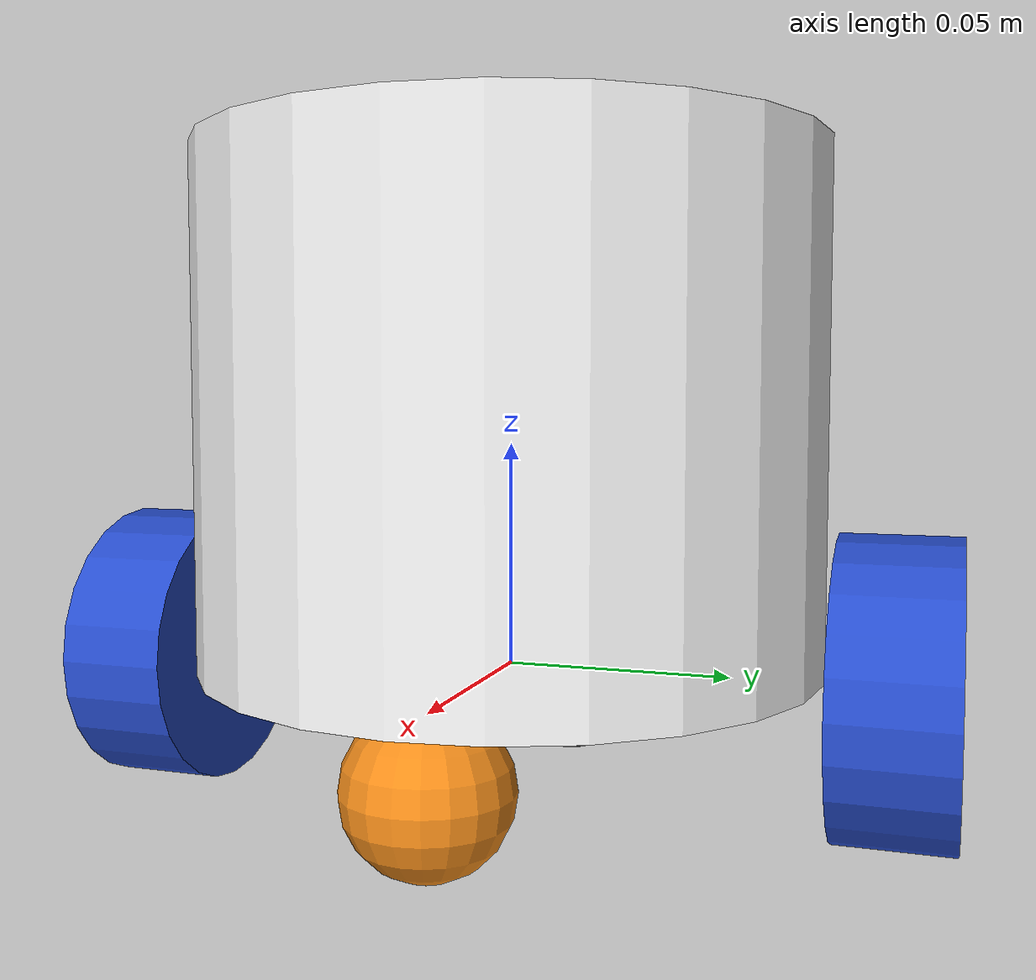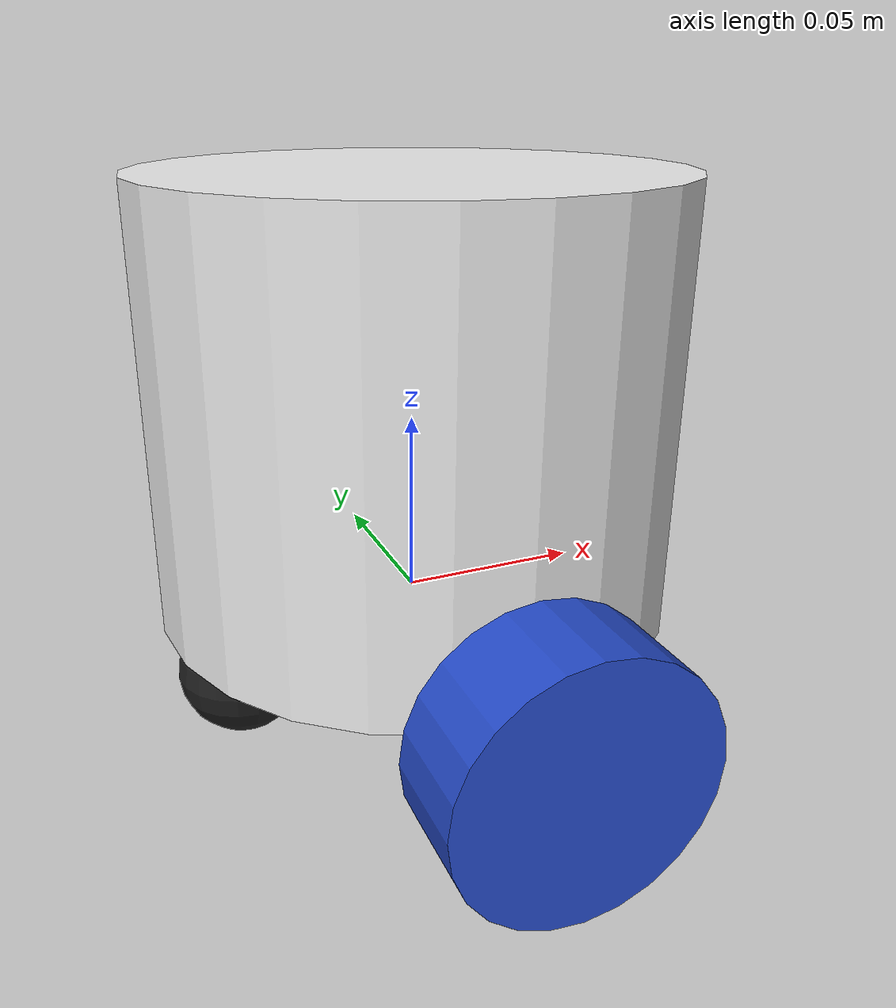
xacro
<?xml version="1.0"?>
<robot xmlns:xacro="http://www.ros.org/wiki/xacro">

    <xacro:include filename="colours.xacro"/>
    <xacro:include filename="inertial_macros.xacro"/>

    <xacro:property name="chassis_radius" value="0.07"/>
    <xacro:property name="chassis_height" value="0.115"/>
    <xacro:property name="wheel_radius" value="0.0325"/>
    <xacro:property name="wheel_width" value="0.025"/>
    <xacro:property name="caster_wheel_radius" value="0.0175"/>
    <xacro:property name="wheel_offset" value="${chassis_radius+0.015}"/>
    <!--xacro:property name="wheel_offset" value="${chassis_radius-wheel_width/2+0.005}"/-->

    <link name="base_link">
    </link>

    <link name="chassis">
        <visual>
            <origin xyz="0 0 ${chassis_height/2}" rpy="0 0 0"/>
            <geometry>
                <cylinder radius="${chassis_radius}" length="${chassis_height}"/>
            </geometry>
            <material name="white"/>
        </visual>
        <collision>
            <origin xyz="0 0 ${chassis_height/2}" rpy="0 0 0"/>
            <geometry>
                <cylinder radius="${chassis_radius}" length="${chassis_height}"/>
            </geometry>
        </collision>
        <xacro:inertial_cylinder mass="0.5" radius="${chassis_radius}" length="${chassis_height}">
            <origin xyz="0 0 ${chassis_height/2}" rpy="0 0 0"/>
        </xacro:inertial_cylinder>
    </link>
    <link name="left_wheel">
        <visual>
            <geometry>
                <cylinder radius="${wheel_radius}" length="${wheel_width}"/>
            </geometry>
            <material name="blue"/>
        </visual>
        <collision>
            <geometry>
                <cylinder radius="${wheel_radius}" length="${wheel_width}"/>
            </geometry>
        </collision>
        <xacro:inertial_cylinder mass="0.1" radius="${wheel_radius}" length="${wheel_width}">
            <origin xyz="0 0 0" rpy="0 0 0"/>
        </xacro:inertial_cylinder>
    </link>
    <link name="right_wheel">
        <visual>
            <geometry>
                <cylinder radius="${wheel_radius}" length="${wheel_width}"/>
            </geometry>
            <material name="blue"/>
        </visual>
        <collision>
            <geometry>
                <cylinder radius="${wheel_radius}" length="${wheel_width}"/>
            </geometry>
        </collision>
        <xacro:inertial_cylinder mass="0.1" radius="${wheel_radius}" length="${wheel_width}">
            <origin xyz="0 0 0" rpy="0 0 0"/>
        </xacro:inertial_cylinder>
    </link>
    <link name="top_caster_wheel">
        <visual>
            <geometry>
                <sphere radius="${caster_wheel_radius}"/>
            </geometry>
            <material name="orange"/>
        </visual>
        <collision>
            <geometry>
                <sphere radius="${caster_wheel_radius}"/>
            </geometry>
        </collision>
        <xacro:inertial_sphere mass="0.1" radius="${caster_wheel_radius}">
            <origin xyz="0 0 0" rpy="0 0 0"/>
        </xacro:inertial_sphere>
    </link>
    <link name="bottom_caster_wheel">
        <visual>
            <geometry>
                <sphere radius="${caster_wheel_radius}"/>
            </geometry>
            <material name="black"/>
        </visual>
        <collision>
            <geometry>
                <sphere radius="${caster_wheel_radius}"/>
            </geometry>
        </collision>
        <xacro:inertial_sphere mass="0.1" radius="${caster_wheel_radius}">
            <origin xyz="0 0 0" rpy="0 0 0"/>
        </xacro:inertial_sphere>
    </link>

    <joint name="chassis_joint" type="fixed">
        <parent link="base_link"/>
        <child link="chassis"/>
        <origin xyz="0 0 0"/>
    </joint>
    <joint name="left_wheel_joint" type="continuous">
        <parent link="base_link"/>
        <child link="left_wheel"/>
        <origin xyz="0 ${wheel_offset} 0" rpy="-${pi/2} 0 0"/>
        <axis xyz="0 0 1"/>
    </joint>
    <joint name="right_wheel_joint" type="continuous">
        <parent link="base_link"/>
        <child link="right_wheel"/>
        <origin xyz="0 -${wheel_offset} 0" rpy="${pi/2} 0 0"/>
        <axis xyz="0 0 -1"/>
    </joint>
    <joint name="top_caster_wheel_joint" type="fixed">
        <parent link="chassis"/>
        <child link="top_caster_wheel"/>
        <origin xyz="0.05 0 -0.015" rpy="0 0 0"/>
    </joint>
    <joint name="bottom_caster_wheel_joint" type="fixed">
        <parent link="chassis"/>
        <child link="bottom_caster_wheel"/>
        <origin xyz="-0.05 0 -0.015" rpy="0 0 0"/>
    </joint>

    <gazebo reference="top_caster_wheel">
        <mu1 value="0.001"/>
        <mu2 value="0.001"/>
    </gazebo>
    <gazebo reference="bottom_caster_wheel">
        <mu1 value="0.001"/>
        <mu2 value="0.001"/>
    </gazebo>

</robot>

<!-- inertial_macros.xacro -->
<robot xmlns:xacro="http://www.ros.org/wiki/xacro" >

    <!-- Specify some standard inertial calculations https://en.wikipedia.org/wiki/List_of_moments_of_inertia -->
    <!-- These make use of xacro's mathematical functionality -->
    <!-- Source: https://github.com/joshnewans/articubot_one/blob/d5aa5e9bc9039073c0d8fd7fe426e170be79c087/description/inertial_macros.xacro -->

    <xacro:macro name="inertial_sphere" params="mass radius *origin">
        <inertial>
            <xacro:insert_block name="origin"/>
            <mass value="${mass}" />
            <inertia ixx="${(2/5) * mass * (radius*radius)}" ixy="0.0" ixz="0.0"
                    iyy="${(2/5) * mass * (radius*radius)}" iyz="0.0"
                    izz="${(2/5) * mass * (radius*radius)}" />
        </inertial>
    </xacro:macro>

    <xacro:macro name="inertial_box" params="mass x y z *origin">
        <inertial>
            <xacro:insert_block name="origin"/>
            <mass value="${mass}" />
            <inertia ixx="${(1/12) * mass * (y*y+z*z)}" ixy="0.0" ixz="0.0"
                    iyy="${(1/12) * mass * (x*x+z*z)}" iyz="0.0"
                    izz="${(1/12) * mass * (x*x+y*y)}" />
        </inertial>
    </xacro:macro>

    <xacro:macro name="inertial_cylinder" params="mass length radius *origin">
        <inertial>
            <xacro:insert_block name="origin"/>
            <mass value="${mass}" />
            <inertia ixx="${(1/12) * mass * (3*radius*radius + length*length)}" ixy="0.0" ixz="0.0"
                    iyy="${(1/12) * mass * (3*radius*radius + length*length)}" iyz="0.0"
                    izz="${(1/2) * mass * (radius*radius)}" />
        </inertial>
    </xacro:macro>

</robot>
